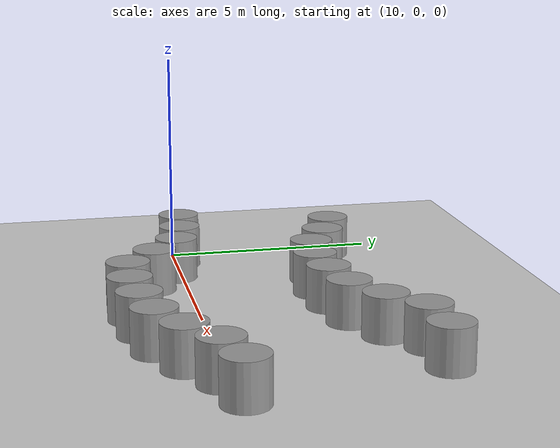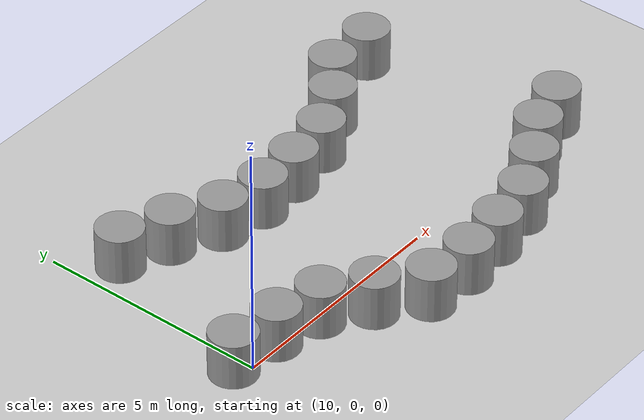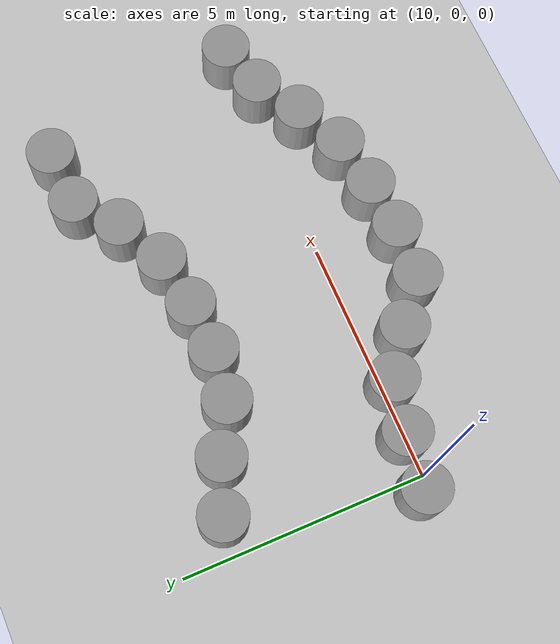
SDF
<sdf version="1.7">
 <world name="default">
  <model name="ground_plane">
   <static>1</static>
   <link name="link">
    <collision name="collision">
     <geometry><plane><normal>0 0 1</normal><size>100 100</size></plane></geometry>
     <surface>
      <contact><collide_bitmask>65535</collide_bitmask></contact>
      <friction><ode><mu>100</mu><mu2>50</mu2></ode></friction>
     </surface>
    </collision>
    <visual name="visual">
     <cast_shadows>0</cast_shadows>
     <geometry><plane><normal>0 0 1</normal><size>100 100</size></plane></geometry>
     <material>
      <script><uri>file://media/materials/scripts/gazebo.material</uri><name>Gazebo/Grey</name></script>
     </material>
    </visual>
   </link>
  </model>
  <model name="gasse_zylinder">
   <link name="link_10">
    <inertial>
     <mass>1</mass>
     <inertia><ixx>0.145833</ixx><ixy>0</ixy><ixz>0</ixz><iyy>0.145833</iyy><iyz>0</iyz><izz>0.125</izz></inertia>
    </inertial>
    <pose>0.729078 2.85746 0 0 -0 0</pose>
    <visual name="visual">
     <geometry><cylinder><radius>0.5</radius><length>1</length></cylinder></geometry>
     <material>
      <lighting>1</lighting>
      <script><uri>file://media/materials/scripts/gazebo.material</uri><name>Gazebo/Grey</name></script>
      <shader type="pixel"/>
     </material>
    </visual>
    <collision name="collision">
     <geometry><cylinder><radius>0.5</radius><length>1</length></cylinder></geometry>
     <surface>
      <friction>
       <ode><mu>1</mu><mu2>1</mu2><fdir1>0 0 0</fdir1><slip1>0</slip1><slip2>0</slip2></ode>
       <torsional>
        <coefficient>1</coefficient>
        <patch_radius>0</patch_radius>
        <surface_radius>0</surface_radius>
        <use_patch_radius>1</use_patch_radius>
        <ode><slip>0</slip></ode>
       </torsional>
      </friction>
      <bounce><restitution_coefficient>0</restitution_coefficient><threshold>1e+06</threshold></bounce>
      <contact>
       <collide_without_contact>0</collide_without_contact>
       <collide_without_contact_bitmask>1</collide_without_contact_bitmask>
       <collide_bitmask>1</collide_bitmask>
       <ode>
        <soft_cfm>0</soft_cfm>
        <soft_erp>0.2</soft_erp>
        <kp>1e+13</kp>
        <kd>1</kd>
        <max_vel>0.01</max_vel>
        <min_depth>0</min_depth>
       </ode>
       <bullet>
        <split_impulse>1</split_impulse>
        <split_impulse_penetration_threshold>-0.01</split_impulse_penetration_threshold>
        <soft_cfm>0</soft_cfm>
        <soft_erp>0.2</soft_erp>
        <kp>1e+13</kp>
        <kd>1</kd>
       </bullet>
      </contact>
     </surface>
    </collision>
   </link>
   <link name="link_11">
    <inertial>
     <mass>1</mass>
     <inertia><ixx>0.145833</ixx><ixy>0</ixy><ixz>0</ixz><iyy>0.145833</iyy><iyz>0</iyz><izz>0.125</izz></inertia>
    </inertial>
    <pose>1.75035 2.46204 0 0 -0 0</pose>
    <visual name="visual">
     <geometry><cylinder><radius>0.5</radius><length>1</length></cylinder></geometry>
     <material>
      <lighting>1</lighting>
      <script><uri>file://media/materials/scripts/gazebo.material</uri><name>Gazebo/Grey</name></script>
      <shader type="pixel"/>
     </material>
    </visual>
    <collision name="collision">
     <geometry><cylinder><radius>0.5</radius><length>1</length></cylinder></geometry>
     <surface>
      <friction>
       <ode><mu>1</mu><mu2>1</mu2><fdir1>0 0 0</fdir1><slip1>0</slip1><slip2>0</slip2></ode>
       <torsional>
        <coefficient>1</coefficient>
        <patch_radius>0</patch_radius>
        <surface_radius>0</surface_radius>
        <use_patch_radius>1</use_patch_radius>
        <ode><slip>0</slip></ode>
       </torsional>
      </friction>
      <bounce><restitution_coefficient>0</restitution_coefficient><threshold>1e+06</threshold></bounce>
      <contact>
       <collide_without_contact>0</collide_without_contact>
       <collide_without_contact_bitmask>1</collide_without_contact_bitmask>
       <collide_bitmask>1</collide_bitmask>
       <ode>
        <soft_cfm>0</soft_cfm>
        <soft_erp>0.2</soft_erp>
        <kp>1e+13</kp>
        <kd>1</kd>
        <max_vel>0.01</max_vel>
        <min_depth>0</min_depth>
       </ode>
       <bullet>
        <split_impulse>1</split_impulse>
        <split_impulse_penetration_threshold>-0.01</split_impulse_penetration_threshold>
        <soft_cfm>0</soft_cfm>
        <soft_erp>0.2</soft_erp>
        <kp>1e+13</kp>
        <kd>1</kd>
       </bullet>
      </contact>
     </surface>
    </collision>
   </link>
   <link name="link_21">
    <inertial>
     <mass>1</mass>
     <inertia><ixx>0.145833</ixx><ixy>0</ixy><ixz>0</ixz><iyy>0.145833</iyy><iyz>0</iyz><izz>0.125</izz></inertia>
    </inertial>
    <pose>-0.270384 -0.811496 0 0 -0 0</pose>
    <visual name="visual">
     <geometry><cylinder><radius>0.5</radius><length>1</length></cylinder></geometry>
     <material>
      <lighting>1</lighting>
      <script><uri>file://media/materials/scripts/gazebo.material</uri><name>Gazebo/Grey</name></script>
      <shader type="pixel"/>
     </material>
    </visual>
    <collision name="collision">
     <geometry><cylinder><radius>0.5</radius><length>1</length></cylinder></geometry>
     <surface>
      <friction>
       <ode><mu>1</mu><mu2>1</mu2><fdir1>0 0 0</fdir1><slip1>0</slip1><slip2>0</slip2></ode>
       <torsional>
        <coefficient>1</coefficient>
        <patch_radius>0</patch_radius>
        <surface_radius>0</surface_radius>
        <use_patch_radius>1</use_patch_radius>
        <ode><slip>0</slip></ode>
       </torsional>
      </friction>
      <bounce><restitution_coefficient>0</restitution_coefficient><threshold>1e+06</threshold></bounce>
      <contact>
       <collide_without_contact>0</collide_without_contact>
       <collide_without_contact_bitmask>1</collide_without_contact_bitmask>
       <collide_bitmask>1</collide_bitmask>
       <ode>
        <soft_cfm>0</soft_cfm>
        <soft_erp>0.2</soft_erp>
        <kp>1e+13</kp>
        <kd>1</kd>
        <max_vel>0.01</max_vel>
        <min_depth>0</min_depth>
       </ode>
       <bullet>
        <split_impulse>1</split_impulse>
        <split_impulse_penetration_threshold>-0.01</split_impulse_penetration_threshold>
        <soft_cfm>0</soft_cfm>
        <soft_erp>0.2</soft_erp>
        <kp>1e+13</kp>
        <kd>1</kd>
       </bullet>
      </contact>
     </surface>
    </collision>
   </link>
   <link name="link_22">
    <inertial>
     <mass>1</mass>
     <inertia><ixx>0.145833</ixx><ixy>0</ixy><ixz>0</ixz><iyy>0.145833</iyy><iyz>0</iyz><izz>0.125</izz></inertia>
    </inertial>
    <pose>0.829348 -0.940978 0 0 -0 0</pose>
    <visual name="visual">
     <geometry><cylinder><radius>0.5</radius><length>1</length></cylinder></geometry>
     <material>
      <lighting>1</lighting>
      <script><uri>file://media/materials/scripts/gazebo.material</uri><name>Gazebo/Grey</name></script>
      <shader type="pixel"/>
     </material>
    </visual>
    <collision name="collision">
     <geometry><cylinder><radius>0.5</radius><length>1</length></cylinder></geometry>
     <surface>
      <friction>
       <ode><mu>1</mu><mu2>1</mu2><fdir1>0 0 0</fdir1><slip1>0</slip1><slip2>0</slip2></ode>
       <torsional>
        <coefficient>1</coefficient>
        <patch_radius>0</patch_radius>
        <surface_radius>0</surface_radius>
        <use_patch_radius>1</use_patch_radius>
        <ode><slip>0</slip></ode>
       </torsional>
      </friction>
      <bounce><restitution_coefficient>0</restitution_coefficient><threshold>1e+06</threshold></bounce>
      <contact>
       <collide_without_contact>0</collide_without_contact>
       <collide_without_contact_bitmask>1</collide_without_contact_bitmask>
       <collide_bitmask>1</collide_bitmask>
       <ode>
        <soft_cfm>0</soft_cfm>
        <soft_erp>0.2</soft_erp>
        <kp>1e+13</kp>
        <kd>1</kd>
        <max_vel>0.01</max_vel>
        <min_depth>0</min_depth>
       </ode>
       <bullet>
        <split_impulse>1</split_impulse>
        <split_impulse_penetration_threshold>-0.01</split_impulse_penetration_threshold>
        <soft_cfm>0</soft_cfm>
        <soft_erp>0.2</soft_erp>
        <kp>1e+13</kp>
        <kd>1</kd>
       </bullet>
      </contact>
     </surface>
    </collision>
   </link>
   <link name="link_23">
    <inertial>
     <mass>1</mass>
     <inertia><ixx>0.145833</ixx><ixy>0</ixy><ixz>0</ixz><iyy>0.145833</iyy><iyz>0</iyz><izz>0.125</izz></inertia>
    </inertial>
    <pose>1.86699 -1.16181 0 0 -0 0</pose>
    <visual name="visual">
     <geometry><cylinder><radius>0.5</radius><length>1</length></cylinder></geometry>
     <material>
      <lighting>1</lighting>
      <script><uri>file://media/materials/scripts/gazebo.material</uri><name>Gazebo/Grey</name></script>
      <shader type="pixel"/>
     </material>
    </visual>
    <collision name="collision">
     <geometry><cylinder><radius>0.5</radius><length>1</length></cylinder></geometry>
     <surface>
      <friction>
       <ode><mu>1</mu><mu2>1</mu2><fdir1>0 0 0</fdir1><slip1>0</slip1><slip2>0</slip2></ode>
       <torsional>
        <coefficient>1</coefficient>
        <patch_radius>0</patch_radius>
        <surface_radius>0</surface_radius>
        <use_patch_radius>1</use_patch_radius>
        <ode><slip>0</slip></ode>
       </torsional>
      </friction>
      <bounce><restitution_coefficient>0</restitution_coefficient><threshold>1e+06</threshold></bounce>
      <contact>
       <collide_without_contact>0</collide_without_contact>
       <collide_without_contact_bitmask>1</collide_without_contact_bitmask>
       <collide_bitmask>1</collide_bitmask>
       <ode>
        <soft_cfm>0</soft_cfm>
        <soft_erp>0.2</soft_erp>
        <kp>1e+13</kp>
        <kd>1</kd>
        <max_vel>0.01</max_vel>
        <min_depth>0</min_depth>
       </ode>
       <bullet>
        <split_impulse>1</split_impulse>
        <split_impulse_penetration_threshold>-0.01</split_impulse_penetration_threshold>
        <soft_cfm>0</soft_cfm>
        <soft_erp>0.2</soft_erp>
        <kp>1e+13</kp>
        <kd>1</kd>
       </bullet>
      </contact>
     </surface>
    </collision>
   </link>
   <link name="link_24">
    <inertial>
     <mass>1</mass>
     <inertia><ixx>0.145833</ixx><ixy>0</ixy><ixz>0</ixz><iyy>0.145833</iyy><iyz>0</iyz><izz>0.125</izz></inertia>
    </inertial>
    <pose>2.71438 1.9468 0 0 -0 0</pose>
    <visual name="visual">
     <geometry><cylinder><radius>0.5</radius><length>1</length></cylinder></geometry>
     <material>
      <lighting>1</lighting>
      <script><uri>file://media/materials/scripts/gazebo.material</uri><name>Gazebo/Grey</name></script>
      <shader type="pixel"/>
     </material>
    </visual>
    <collision name="collision">
     <geometry><cylinder><radius>0.5</radius><length>1</length></cylinder></geometry>
     <surface>
      <friction>
       <ode><mu>1</mu><mu2>1</mu2><fdir1>0 0 0</fdir1><slip1>0</slip1><slip2>0</slip2></ode>
       <torsional>
        <coefficient>1</coefficient>
        <patch_radius>0</patch_radius>
        <surface_radius>0</surface_radius>
        <use_patch_radius>1</use_patch_radius>
        <ode><slip>0</slip></ode>
       </torsional>
      </friction>
      <bounce><restitution_coefficient>0</restitution_coefficient><threshold>1e+06</threshold></bounce>
      <contact>
       <collide_without_contact>0</collide_without_contact>
       <collide_without_contact_bitmask>1</collide_without_contact_bitmask>
       <collide_bitmask>1</collide_bitmask>
       <ode>
        <soft_cfm>0</soft_cfm>
        <soft_erp>0.2</soft_erp>
        <kp>1e+13</kp>
        <kd>1</kd>
        <max_vel>0.01</max_vel>
        <min_depth>0</min_depth>
       </ode>
       <bullet>
        <split_impulse>1</split_impulse>
        <split_impulse_penetration_threshold>-0.01</split_impulse_penetration_threshold>
        <soft_cfm>0</soft_cfm>
        <soft_erp>0.2</soft_erp>
        <kp>1e+13</kp>
        <kd>1</kd>
       </bullet>
      </contact>
     </surface>
    </collision>
   </link>
   <link name="link_25">
    <inertial>
     <mass>1</mass>
     <inertia><ixx>0.145833</ixx><ixy>0</ixy><ixz>0</ixz><iyy>0.145833</iyy><iyz>0</iyz><izz>0.125</izz></inertia>
    </inertial>
    <pose>3.73874 1.79215 0 0 -0 0</pose>
    <visual name="visual">
     <geometry><cylinder><radius>0.5</radius><length>1</length></cylinder></geometry>
     <material>
      <lighting>1</lighting>
      <script><uri>file://media/materials/scripts/gazebo.material</uri><name>Gazebo/Grey</name></script>
      <shader type="pixel"/>
     </material>
    </visual>
    <collision name="collision">
     <geometry><cylinder><radius>0.5</radius><length>1</length></cylinder></geometry>
     <surface>
      <friction>
       <ode><mu>1</mu><mu2>1</mu2><fdir1>0 0 0</fdir1><slip1>0</slip1><slip2>0</slip2></ode>
       <torsional>
        <coefficient>1</coefficient>
        <patch_radius>0</patch_radius>
        <surface_radius>0</surface_radius>
        <use_patch_radius>1</use_patch_radius>
        <ode><slip>0</slip></ode>
       </torsional>
      </friction>
      <bounce><restitution_coefficient>0</restitution_coefficient><threshold>1e+06</threshold></bounce>
      <contact>
       <collide_without_contact>0</collide_without_contact>
       <collide_without_contact_bitmask>1</collide_without_contact_bitmask>
       <collide_bitmask>1</collide_bitmask>
       <ode>
        <soft_cfm>0</soft_cfm>
        <soft_erp>0.2</soft_erp>
        <kp>1e+13</kp>
        <kd>1</kd>
        <max_vel>0.01</max_vel>
        <min_depth>0</min_depth>
       </ode>
       <bullet>
        <split_impulse>1</split_impulse>
        <split_impulse_penetration_threshold>-0.01</split_impulse_penetration_threshold>
        <soft_cfm>0</soft_cfm>
        <soft_erp>0.2</soft_erp>
        <kp>1e+13</kp>
        <kd>1</kd>
       </bullet>
      </contact>
     </surface>
    </collision>
   </link>
   <link name="link_26">
    <inertial>
     <mass>1</mass>
     <inertia><ixx>0.145833</ixx><ixy>0</ixy><ixz>0</ixz><iyy>0.145833</iyy><iyz>0</iyz><izz>0.125</izz></inertia>
    </inertial>
    <pose>4.76046 1.84958 0 0 -0 0</pose>
    <visual name="visual">
     <geometry><cylinder><radius>0.5</radius><length>1</length></cylinder></geometry>
     <material>
      <lighting>1</lighting>
      <script><uri>file://media/materials/scripts/gazebo.material</uri><name>Gazebo/Grey</name></script>
      <shader type="pixel"/>
     </material>
    </visual>
    <collision name="collision">
     <geometry><cylinder><radius>0.5</radius><length>1</length></cylinder></geometry>
     <surface>
      <friction>
       <ode><mu>1</mu><mu2>1</mu2><fdir1>0 0 0</fdir1><slip1>0</slip1><slip2>0</slip2></ode>
       <torsional>
        <coefficient>1</coefficient>
        <patch_radius>0</patch_radius>
        <surface_radius>0</surface_radius>
        <use_patch_radius>1</use_patch_radius>
        <ode><slip>0</slip></ode>
       </torsional>
      </friction>
      <bounce><restitution_coefficient>0</restitution_coefficient><threshold>1e+06</threshold></bounce>
      <contact>
       <collide_without_contact>0</collide_without_contact>
       <collide_without_contact_bitmask>1</collide_without_contact_bitmask>
       <collide_bitmask>1</collide_bitmask>
       <ode>
        <soft_cfm>0</soft_cfm>
        <soft_erp>0.2</soft_erp>
        <kp>1e+13</kp>
        <kd>1</kd>
        <max_vel>0.01</max_vel>
        <min_depth>0</min_depth>
       </ode>
       <bullet>
        <split_impulse>1</split_impulse>
        <split_impulse_penetration_threshold>-0.01</split_impulse_penetration_threshold>
        <soft_cfm>0</soft_cfm>
        <soft_erp>0.2</soft_erp>
        <kp>1e+13</kp>
        <kd>1</kd>
       </bullet>
      </contact>
     </surface>
    </collision>
   </link>
   <link name="link_27">
    <inertial>
     <mass>1</mass>
     <inertia><ixx>0.145833</ixx><ixy>0</ixy><ixz>0</ixz><iyy>0.145833</iyy><iyz>0</iyz><izz>0.125</izz></inertia>
    </inertial>
    <pose>5.84036 2.02666 0 0 -0 0</pose>
    <visual name="visual">
     <geometry><cylinder><radius>0.5</radius><length>1</length></cylinder></geometry>
     <material>
      <lighting>1</lighting>
      <script><uri>file://media/materials/scripts/gazebo.material</uri><name>Gazebo/Grey</name></script>
      <shader type="pixel"/>
     </material>
    </visual>
    <collision name="collision">
     <geometry><cylinder><radius>0.5</radius><length>1</length></cylinder></geometry>
     <surface>
      <friction>
       <ode><mu>1</mu><mu2>1</mu2><fdir1>0 0 0</fdir1><slip1>0</slip1><slip2>0</slip2></ode>
       <torsional>
        <coefficient>1</coefficient>
        <patch_radius>0</patch_radius>
        <surface_radius>0</surface_radius>
        <use_patch_radius>1</use_patch_radius>
        <ode><slip>0</slip></ode>
       </torsional>
      </friction>
      <bounce><restitution_coefficient>0</restitution_coefficient><threshold>1e+06</threshold></bounce>
      <contact>
       <collide_without_contact>0</collide_without_contact>
       <collide_without_contact_bitmask>1</collide_without_contact_bitmask>
       <collide_bitmask>1</collide_bitmask>
       <ode>
        <soft_cfm>0</soft_cfm>
        <soft_erp>0.2</soft_erp>
        <kp>1e+13</kp>
        <kd>1</kd>
        <max_vel>0.01</max_vel>
        <min_depth>0</min_depth>
       </ode>
       <bullet>
        <split_impulse>1</split_impulse>
        <split_impulse_penetration_threshold>-0.01</split_impulse_penetration_threshold>
        <soft_cfm>0</soft_cfm>
        <soft_erp>0.2</soft_erp>
        <kp>1e+13</kp>
        <kd>1</kd>
       </bullet>
      </contact>
     </surface>
    </collision>
   </link>
   <link name="link_28">
    <inertial>
     <mass>1</mass>
     <inertia><ixx>0.145833</ixx><ixy>0</ixy><ixz>0</ixz><iyy>0.145833</iyy><iyz>0</iyz><izz>0.125</izz></inertia>
    </inertial>
    <pose>2.72293 -1.78441 0 0 -0 0</pose>
    <visual name="visual">
     <geometry><cylinder><radius>0.5</radius><length>1</length></cylinder></geometry>
     <material>
      <lighting>1</lighting>
      <script><uri>file://media/materials/scripts/gazebo.material</uri><name>Gazebo/Grey</name></script>
      <shader type="pixel"/>
     </material>
    </visual>
    <collision name="collision">
     <geometry><cylinder><radius>0.5</radius><length>1</length></cylinder></geometry>
     <surface>
      <friction>
       <ode><mu>1</mu><mu2>1</mu2><fdir1>0 0 0</fdir1><slip1>0</slip1><slip2>0</slip2></ode>
       <torsional>
        <coefficient>1</coefficient>
        <patch_radius>0</patch_radius>
        <surface_radius>0</surface_radius>
        <use_patch_radius>1</use_patch_radius>
        <ode><slip>0</slip></ode>
       </torsional>
      </friction>
      <bounce><restitution_coefficient>0</restitution_coefficient><threshold>1e+06</threshold></bounce>
      <contact>
       <collide_without_contact>0</collide_without_contact>
       <collide_without_contact_bitmask>1</collide_without_contact_bitmask>
       <collide_bitmask>1</collide_bitmask>
       <ode>
        <soft_cfm>0</soft_cfm>
        <soft_erp>0.2</soft_erp>
        <kp>1e+13</kp>
        <kd>1</kd>
        <max_vel>0.01</max_vel>
        <min_depth>0</min_depth>
       </ode>
       <bullet>
        <split_impulse>1</split_impulse>
        <split_impulse_penetration_threshold>-0.01</split_impulse_penetration_threshold>
        <soft_cfm>0</soft_cfm>
        <soft_erp>0.2</soft_erp>
        <kp>1e+13</kp>
        <kd>1</kd>
       </bullet>
      </contact>
     </surface>
    </collision>
   </link>
   <link name="link_29">
    <inertial>
     <mass>1</mass>
     <inertia><ixx>0.145833</ixx><ixy>0</ixy><ixz>0</ixz><iyy>0.145833</iyy><iyz>0</iyz><izz>0.125</izz></inertia>
    </inertial>
    <pose>3.5838 -2.47343 0 0 -0 0</pose>
    <visual name="visual">
     <geometry><cylinder><radius>0.5</radius><length>1</length></cylinder></geometry>
     <material>
      <lighting>1</lighting>
      <script><uri>file://media/materials/scripts/gazebo.material</uri><name>Gazebo/Grey</name></script>
      <shader type="pixel"/>
     </material>
    </visual>
    <collision name="collision">
     <geometry><cylinder><radius>0.5</radius><length>1</length></cylinder></geometry>
     <surface>
      <friction>
       <ode><mu>1</mu><mu2>1</mu2><fdir1>0 0 0</fdir1><slip1>0</slip1><slip2>0</slip2></ode>
       <torsional>
        <coefficient>1</coefficient>
        <patch_radius>0</patch_radius>
        <surface_radius>0</surface_radius>
        <use_patch_radius>1</use_patch_radius>
        <ode><slip>0</slip></ode>
       </torsional>
      </friction>
      <bounce><restitution_coefficient>0</restitution_coefficient><threshold>1e+06</threshold></bounce>
      <contact>
       <collide_without_contact>0</collide_without_contact>
       <collide_without_contact_bitmask>1</collide_without_contact_bitmask>
       <collide_bitmask>1</collide_bitmask>
       <ode>
        <soft_cfm>0</soft_cfm>
        <soft_erp>0.2</soft_erp>
        <kp>1e+13</kp>
        <kd>1</kd>
        <max_vel>0.01</max_vel>
        <min_depth>0</min_depth>
       </ode>
       <bullet>
        <split_impulse>1</split_impulse>
        <split_impulse_penetration_threshold>-0.01</split_impulse_penetration_threshold>
        <soft_cfm>0</soft_cfm>
        <soft_erp>0.2</soft_erp>
        <kp>1e+13</kp>
        <kd>1</kd>
       </bullet>
      </contact>
     </surface>
    </collision>
   </link>
   <link name="link_30">
    <inertial>
     <mass>1</mass>
     <inertia><ixx>0.145833</ixx><ixy>0</ixy><ixz>0</ixz><iyy>0.145833</iyy><iyz>0</iyz><izz>0.125</izz></inertia>
    </inertial>
    <pose>4.65991 -2.54016 0 0 -0 0</pose>
    <visual name="visual">
     <geometry><cylinder><radius>0.5</radius><length>1</length></cylinder></geometry>
     <material>
      <lighting>1</lighting>
      <script><uri>file://media/materials/scripts/gazebo.material</uri><name>Gazebo/Grey</name></script>
      <shader type="pixel"/>
     </material>
    </visual>
    <collision name="collision">
     <geometry><cylinder><radius>0.5</radius><length>1</length></cylinder></geometry>
     <surface>
      <friction>
       <ode><mu>1</mu><mu2>1</mu2><fdir1>0 0 0</fdir1><slip1>0</slip1><slip2>0</slip2></ode>
       <torsional>
        <coefficient>1</coefficient>
        <patch_radius>0</patch_radius>
        <surface_radius>0</surface_radius>
        <use_patch_radius>1</use_patch_radius>
        <ode><slip>0</slip></ode>
       </torsional>
      </friction>
      <bounce><restitution_coefficient>0</restitution_coefficient><threshold>1e+06</threshold></bounce>
      <contact>
       <collide_without_contact>0</collide_without_contact>
       <collide_without_contact_bitmask>1</collide_without_contact_bitmask>
       <collide_bitmask>1</collide_bitmask>
       <ode>
        <soft_cfm>0</soft_cfm>
        <soft_erp>0.2</soft_erp>
        <kp>1e+13</kp>
        <kd>1</kd>
        <max_vel>0.01</max_vel>
        <min_depth>0</min_depth>
       </ode>
       <bullet>
        <split_impulse>1</split_impulse>
        <split_impulse_penetration_threshold>-0.01</split_impulse_penetration_threshold>
        <soft_cfm>0</soft_cfm>
        <soft_erp>0.2</soft_erp>
        <kp>1e+13</kp>
        <kd>1</kd>
       </bullet>
      </contact>
     </surface>
    </collision>
   </link>
   <link name="link_31">
    <inertial>
     <mass>1</mass>
     <inertia><ixx>0.145833</ixx><ixy>0</ixy><ixz>0</ixz><iyy>0.145833</iyy><iyz>0</iyz><izz>0.125</izz></inertia>
    </inertial>
    <pose>5.70112 -2.44791 0 0 -0 0</pose>
    <visual name="visual">
     <geometry><cylinder><radius>0.5</radius><length>1</length></cylinder></geometry>
     <material>
      <lighting>1</lighting>
      <script><uri>file://media/materials/scripts/gazebo.material</uri><name>Gazebo/Grey</name></script>
      <shader type="pixel"/>
     </material>
    </visual>
    <collision name="collision">
     <geometry><cylinder><radius>0.5</radius><length>1</length></cylinder></geometry>
     <surface>
      <friction>
       <ode><mu>1</mu><mu2>1</mu2><fdir1>0 0 0</fdir1><slip1>0</slip1><slip2>0</slip2></ode>
       <torsional>
        <coefficient>1</coefficient>
        <patch_radius>0</patch_radius>
        <surface_radius>0</surface_radius>
        <use_patch_radius>1</use_patch_radius>
        <ode><slip>0</slip></ode>
       </torsional>
      </friction>
      <bounce><restitution_coefficient>0</restitution_coefficient><threshold>1e+06</threshold></bounce>
      <contact>
       <collide_without_contact>0</collide_without_contact>
       <collide_without_contact_bitmask>1</collide_without_contact_bitmask>
       <collide_bitmask>1</collide_bitmask>
       <ode>
        <soft_cfm>0</soft_cfm>
        <soft_erp>0.2</soft_erp>
        <kp>1e+13</kp>
        <kd>1</kd>
        <max_vel>0.01</max_vel>
        <min_depth>0</min_depth>
       </ode>
       <bullet>
        <split_impulse>1</split_impulse>
        <split_impulse_penetration_threshold>-0.01</split_impulse_penetration_threshold>
        <soft_cfm>0</soft_cfm>
        <soft_erp>0.2</soft_erp>
        <kp>1e+13</kp>
        <kd>1</kd>
       </bullet>
      </contact>
     </surface>
    </collision>
   </link>
   <link name="link_32">
    <inertial>
     <mass>1</mass>
     <inertia><ixx>0.145833</ixx><ixy>0</ixy><ixz>0</ixz><iyy>0.145833</iyy><iyz>0</iyz><izz>0.125</izz></inertia>
    </inertial>
    <pose>6.76973 -2.26286 0 0 -0 0</pose>
    <visual name="visual">
     <geometry><cylinder><radius>0.5</radius><length>1</length></cylinder></geometry>
     <material>
      <lighting>1</lighting>
      <script><uri>file://media/materials/scripts/gazebo.material</uri><name>Gazebo/Grey</name></script>
      <shader type="pixel"/>
     </material>
    </visual>
    <collision name="collision">
     <geometry><cylinder><radius>0.5</radius><length>1</length></cylinder></geometry>
     <surface>
      <friction>
       <ode><mu>1</mu><mu2>1</mu2><fdir1>0 0 0</fdir1><slip1>0</slip1><slip2>0</slip2></ode>
       <torsional>
        <coefficient>1</coefficient>
        <patch_radius>0</patch_radius>
        <surface_radius>0</surface_radius>
        <use_patch_radius>1</use_patch_radius>
        <ode><slip>0</slip></ode>
       </torsional>
      </friction>
      <bounce><restitution_coefficient>0</restitution_coefficient><threshold>1e+06</threshold></bounce>
      <contact>
       <collide_without_contact>0</collide_without_contact>
       <collide_without_contact_bitmask>1</collide_without_contact_bitmask>
       <collide_bitmask>1</collide_bitmask>
       <ode>
        <soft_cfm>0</soft_cfm>
        <soft_erp>0.2</soft_erp>
        <kp>1e+13</kp>
        <kd>1</kd>
        <max_vel>0.01</max_vel>
        <min_depth>0</min_depth>
       </ode>
       <bullet>
        <split_impulse>1</split_impulse>
        <split_impulse_penetration_threshold>-0.01</split_impulse_penetration_threshold>
        <soft_cfm>0</soft_cfm>
        <soft_erp>0.2</soft_erp>
        <kp>1e+13</kp>
        <kd>1</kd>
       </bullet>
      </contact>
     </surface>
    </collision>
   </link>
   <link name="link_33">
    <inertial>
     <mass>1</mass>
     <inertia><ixx>0.145833</ixx><ixy>0</ixy><ixz>0</ixz><iyy>0.145833</iyy><iyz>0</iyz><izz>0.125</izz></inertia>
    </inertial>
    <pose>7.76391 -1.79281 0 0 -0 0</pose>
    <visual name="visual">
     <geometry><cylinder><radius>0.5</radius><length>1</length></cylinder></geometry>
     <material>
      <lighting>1</lighting>
      <script><uri>file://media/materials/scripts/gazebo.material</uri><name>Gazebo/Grey</name></script>
      <shader type="pixel"/>
     </material>
    </visual>
    <collision name="collision">
     <geometry><cylinder><radius>0.5</radius><length>1</length></cylinder></geometry>
     <surface>
      <friction>
       <ode><mu>1</mu><mu2>1</mu2><fdir1>0 0 0</fdir1><slip1>0</slip1><slip2>0</slip2></ode>
       <torsional>
        <coefficient>1</coefficient>
        <patch_radius>0</patch_radius>
        <surface_radius>0</surface_radius>
        <use_patch_radius>1</use_patch_radius>
        <ode><slip>0</slip></ode>
       </torsional>
      </friction>
      <bounce><restitution_coefficient>0</restitution_coefficient><threshold>1e+06</threshold></bounce>
      <contact>
       <collide_without_contact>0</collide_without_contact>
       <collide_without_contact_bitmask>1</collide_without_contact_bitmask>
       <collide_bitmask>1</collide_bitmask>
       <ode>
        <soft_cfm>0</soft_cfm>
        <soft_erp>0.2</soft_erp>
        <kp>1e+13</kp>
        <kd>1</kd>
        <max_vel>0.01</max_vel>
        <min_depth>0</min_depth>
       </ode>
       <bullet>
        <split_impulse>1</split_impulse>
        <split_impulse_penetration_threshold>-0.01</split_impulse_penetration_threshold>
        <soft_cfm>0</soft_cfm>
        <soft_erp>0.2</soft_erp>
        <kp>1e+13</kp>
        <kd>1</kd>
       </bullet>
      </contact>
     </surface>
    </collision>
   </link>
   <link name="link_34">
    <inertial>
     <mass>1</mass>
     <inertia><ixx>0.145833</ixx><ixy>0</ixy><ixz>0</ixz><iyy>0.145833</iyy><iyz>0</iyz><izz>0.125</izz></inertia>
    </inertial>
    <pose>8.65526 -1.22787 0 0 -0 0</pose>
    <visual name="visual">
     <geometry><cylinder><radius>0.5</radius><length>1</length></cylinder></geometry>
     <material>
      <lighting>1</lighting>
      <script><uri>file://media/materials/scripts/gazebo.material</uri><name>Gazebo/Grey</name></script>
      <shader type="pixel"/>
     </material>
    </visual>
    <collision name="collision">
     <geometry><cylinder><radius>0.5</radius><length>1</length></cylinder></geometry>
     <surface>
      <friction>
       <ode><mu>1</mu><mu2>1</mu2><fdir1>0 0 0</fdir1><slip1>0</slip1><slip2>0</slip2></ode>
       <torsional>
        <coefficient>1</coefficient>
        <patch_radius>0</patch_radius>
        <surface_radius>0</surface_radius>
        <use_patch_radius>1</use_patch_radius>
        <ode><slip>0</slip></ode>
       </torsional>
      </friction>
      <bounce><restitution_coefficient>0</restitution_coefficient><threshold>1e+06</threshold></bounce>
      <contact>
       <collide_without_contact>0</collide_without_contact>
       <collide_without_contact_bitmask>1</collide_without_contact_bitmask>
       <collide_bitmask>1</collide_bitmask>
       <ode>
        <soft_cfm>0</soft_cfm>
        <soft_erp>0.2</soft_erp>
        <kp>1e+13</kp>
        <kd>1</kd>
        <max_vel>0.01</max_vel>
        <min_depth>0</min_depth>
       </ode>
       <bullet>
        <split_impulse>1</split_impulse>
        <split_impulse_penetration_threshold>-0.01</split_impulse_penetration_threshold>
        <soft_cfm>0</soft_cfm>
        <soft_erp>0.2</soft_erp>
        <kp>1e+13</kp>
        <kd>1</kd>
       </bullet>
      </contact>
     </surface>
    </collision>
   </link>
   <link name="link_35">
    <inertial>
     <mass>1</mass>
     <inertia><ixx>0.145833</ixx><ixy>0</ixy><ixz>0</ixz><iyy>0.145833</iyy><iyz>0</iyz><izz>0.125</izz></inertia>
    </inertial>
    <pose>6.84559 2.53689 0 0 -0 0</pose>
    <visual name="visual">
     <geometry><cylinder><radius>0.5</radius><length>1</length></cylinder></geometry>
     <material>
      <lighting>1</lighting>
      <script><uri>file://media/materials/scripts/gazebo.material</uri><name>Gazebo/Grey</name></script>
      <shader type="pixel"/>
     </material>
    </visual>
    <collision name="collision">
     <geometry><cylinder><radius>0.5</radius><length>1</length></cylinder></geometry>
     <surface>
      <friction>
       <ode><mu>1</mu><mu2>1</mu2><fdir1>0 0 0</fdir1><slip1>0</slip1><slip2>0</slip2></ode>
       <torsional>
        <coefficient>1</coefficient>
        <patch_radius>0</patch_radius>
        <surface_radius>0</surface_radius>
        <use_patch_radius>1</use_patch_radius>
        <ode><slip>0</slip></ode>
       </torsional>
      </friction>
      <bounce><restitution_coefficient>0</restitution_coefficient><threshold>1e+06</threshold></bounce>
      <contact>
       <collide_without_contact>0</collide_without_contact>
       <collide_without_contact_bitmask>1</collide_without_contact_bitmask>
       <collide_bitmask>1</collide_bitmask>
       <ode>
        <soft_cfm>0</soft_cfm>
        <soft_erp>0.2</soft_erp>
        <kp>1e+13</kp>
        <kd>1</kd>
        <max_vel>0.01</max_vel>
        <min_depth>0</min_depth>
       </ode>
       <bullet>
        <split_impulse>1</split_impulse>
        <split_impulse_penetration_threshold>-0.01</split_impulse_penetration_threshold>
        <soft_cfm>0</soft_cfm>
        <soft_erp>0.2</soft_erp>
        <kp>1e+13</kp>
        <kd>1</kd>
       </bullet>
      </contact>
     </surface>
    </collision>
   </link>
   <link name="link_36">
    <inertial>
     <mass>1</mass>
     <inertia><ixx>0.145833</ixx><ixy>0</ixy><ixz>0</ixz><iyy>0.145833</iyy><iyz>0</iyz><izz>0.125</izz></inertia>
    </inertial>
    <pose>7.6562 3.20021 0 0 -0 0</pose>
    <visual name="visual">
     <geometry><cylinder><radius>0.5</radius><length>1</length></cylinder></geometry>
     <material>
      <lighting>1</lighting>
      <script><uri>file://media/materials/scripts/gazebo.material</uri><name>Gazebo/Grey</name></script>
      <shader type="pixel"/>
     </material>
    </visual>
    <collision name="collision">
     <geometry><cylinder><radius>0.5</radius><length>1</length></cylinder></geometry>
     <surface>
      <friction>
       <ode><mu>1</mu><mu2>1</mu2><fdir1>0 0 0</fdir1><slip1>0</slip1><slip2>0</slip2></ode>
       <torsional>
        <coefficient>1</coefficient>
        <patch_radius>0</patch_radius>
        <surface_radius>0</surface_radius>
        <use_patch_radius>1</use_patch_radius>
        <ode><slip>0</slip></ode>
       </torsional>
      </friction>
      <bounce><restitution_coefficient>0</restitution_coefficient><threshold>1e+06</threshold></bounce>
      <contact>
       <collide_without_contact>0</collide_without_contact>
       <collide_without_contact_bitmask>1</collide_without_contact_bitmask>
       <collide_bitmask>1</collide_bitmask>
       <ode>
        <soft_cfm>0</soft_cfm>
        <soft_erp>0.2</soft_erp>
        <kp>1e+13</kp>
        <kd>1</kd>
        <max_vel>0.01</max_vel>
        <min_depth>0</min_depth>
       </ode>
       <bullet>
        <split_impulse>1</split_impulse>
        <split_impulse_penetration_threshold>-0.01</split_impulse_penetration_threshold>
        <soft_cfm>0</soft_cfm>
        <soft_erp>0.2</soft_erp>
        <kp>1e+13</kp>
        <kd>1</kd>
       </bullet>
      </contact>
     </surface>
    </collision>
   </link>
   <link name="link_37">
    <inertial>
     <mass>1</mass>
     <inertia><ixx>0.145833</ixx><ixy>0</ixy><ixz>0</ixz><iyy>0.145833</iyy><iyz>0</iyz><izz>0.125</izz></inertia>
    </inertial>
    <pose>8.82186 3.25197 0 0 -0 0</pose>
    <visual name="visual">
     <geometry><cylinder><radius>0.5</radius><length>1</length></cylinder></geometry>
     <material>
      <lighting>1</lighting>
      <script><uri>file://media/materials/scripts/gazebo.material</uri><name>Gazebo/Grey</name></script>
      <shader type="pixel"/>
     </material>
    </visual>
    <collision name="collision">
     <geometry><cylinder><radius>0.5</radius><length>1</length></cylinder></geometry>
     <surface>
      <friction>
       <ode><mu>1</mu><mu2>1</mu2><fdir1>0 0 0</fdir1><slip1>0</slip1><slip2>0</slip2></ode>
       <torsional>
        <coefficient>1</coefficient>
        <patch_radius>0</patch_radius>
        <surface_radius>0</surface_radius>
        <use_patch_radius>1</use_patch_radius>
        <ode><slip>0</slip></ode>
       </torsional>
      </friction>
      <bounce><restitution_coefficient>0</restitution_coefficient><threshold>1e+06</threshold></bounce>
      <contact>
       <collide_without_contact>0</collide_without_contact>
       <collide_without_contact_bitmask>1</collide_without_contact_bitmask>
       <collide_bitmask>1</collide_bitmask>
       <ode>
        <soft_cfm>0</soft_cfm>
        <soft_erp>0.2</soft_erp>
        <kp>1e+13</kp>
        <kd>1</kd>
        <max_vel>0.01</max_vel>
        <min_depth>0</min_depth>
       </ode>
       <bullet>
        <split_impulse>1</split_impulse>
        <split_impulse_penetration_threshold>-0.01</split_impulse_penetration_threshold>
        <soft_cfm>0</soft_cfm>
        <soft_erp>0.2</soft_erp>
        <kp>1e+13</kp>
        <kd>1</kd>
       </bullet>
      </contact>
     </surface>
    </collision>
   </link>
   <link name="link_39">
    <inertial>
     <mass>1</mass>
     <inertia><ixx>0.145833</ixx><ixy>0</ixy><ixz>0</ixz><iyy>0.145833</iyy><iyz>0</iyz><izz>0.125</izz></inertia>
    </inertial>
    <pose>9.64697 -0.949318 0 0 -0 0</pose>
    <visual name="visual">
     <geometry><cylinder><radius>0.5</radius><length>1</length></cylinder></geometry>
     <material>
      <lighting>1</lighting>
      <script><uri>file://media/materials/scripts/gazebo.material</uri><name>Gazebo/Grey</name></script>
      <shader type="pixel"/>
     </material>
    </visual>
    <collision name="collision">
     <geometry><cylinder><radius>0.5</radius><length>1</length></cylinder></geometry>
     <surface>
      <friction>
       <ode><mu>1</mu><mu2>1</mu2><fdir1>0 0 0</fdir1><slip1>0</slip1><slip2>0</slip2></ode>
       <torsional>
        <coefficient>1</coefficient>
        <patch_radius>0</patch_radius>
        <surface_radius>0</surface_radius>
        <use_patch_radius>1</use_patch_radius>
        <ode><slip>0</slip></ode>
       </torsional>
      </friction>
      <bounce><restitution_coefficient>0</restitution_coefficient><threshold>1e+06</threshold></bounce>
      <contact>
       <collide_without_contact>0</collide_without_contact>
       <collide_without_contact_bitmask>1</collide_without_contact_bitmask>
       <collide_bitmask>1</collide_bitmask>
       <ode>
        <soft_cfm>0</soft_cfm>
        <soft_erp>0.2</soft_erp>
        <kp>1e+13</kp>
        <kd>1</kd>
        <max_vel>0.01</max_vel>
        <min_depth>0</min_depth>
       </ode>
       <bullet>
        <split_impulse>1</split_impulse>
        <split_impulse_penetration_threshold>-0.01</split_impulse_penetration_threshold>
        <soft_cfm>0</soft_cfm>
        <soft_erp>0.2</soft_erp>
        <kp>1e+13</kp>
        <kd>1</kd>
       </bullet>
      </contact>
     </surface>
    </collision>
   </link>
   <static>0</static>
   <pose>9.97032 1.02715 0.499979 -2e-06 2e-06 -0</pose>
  </model>
 </world>
</sdf>
